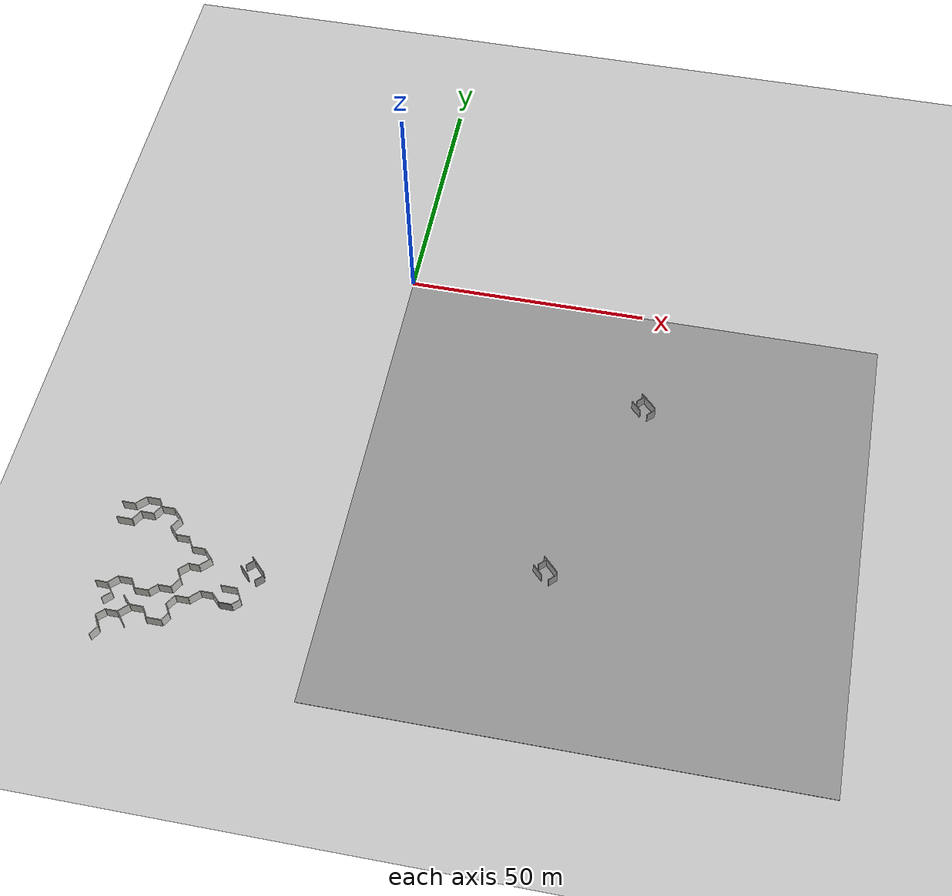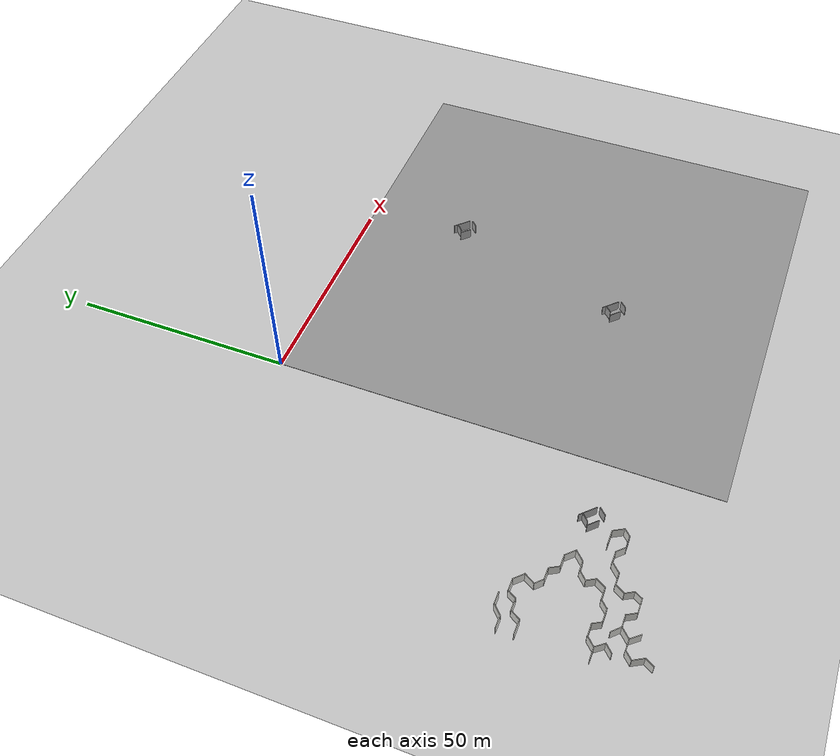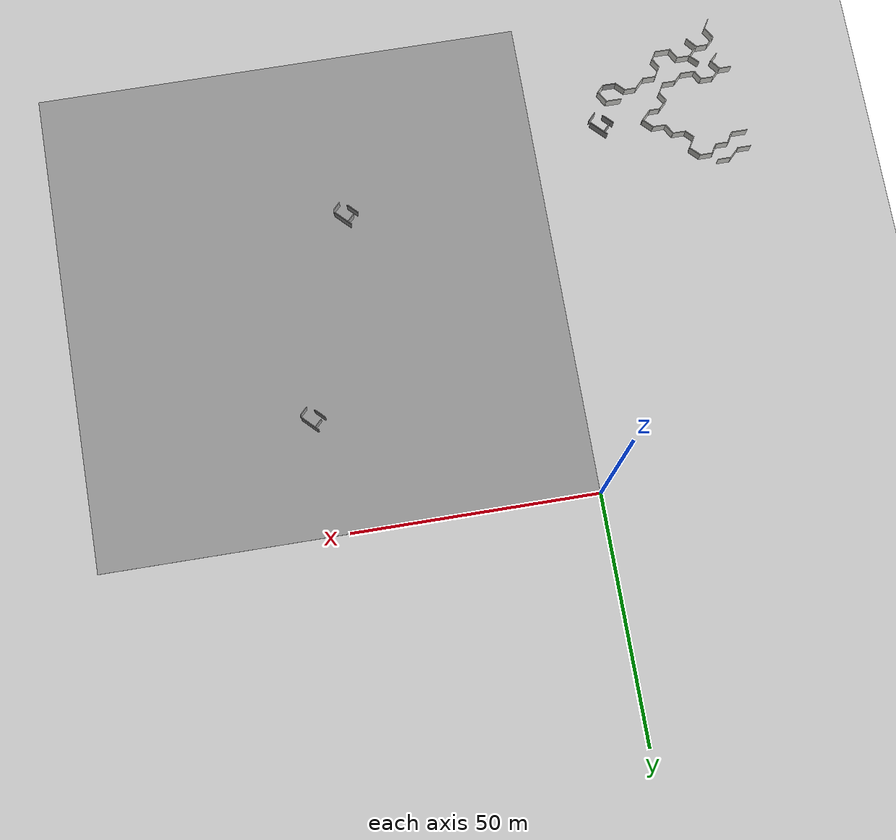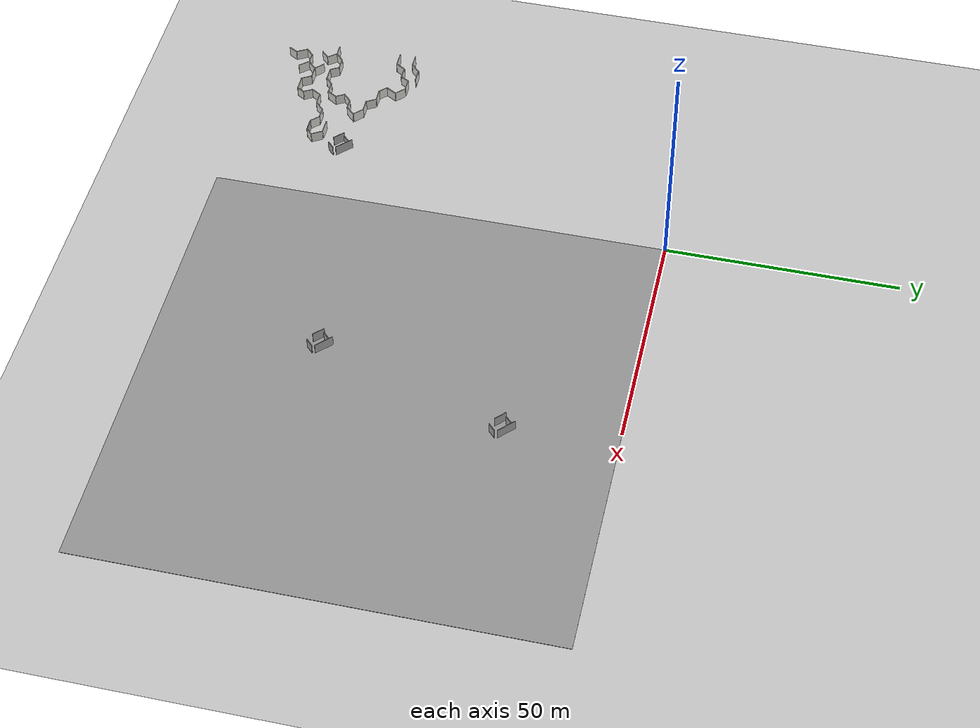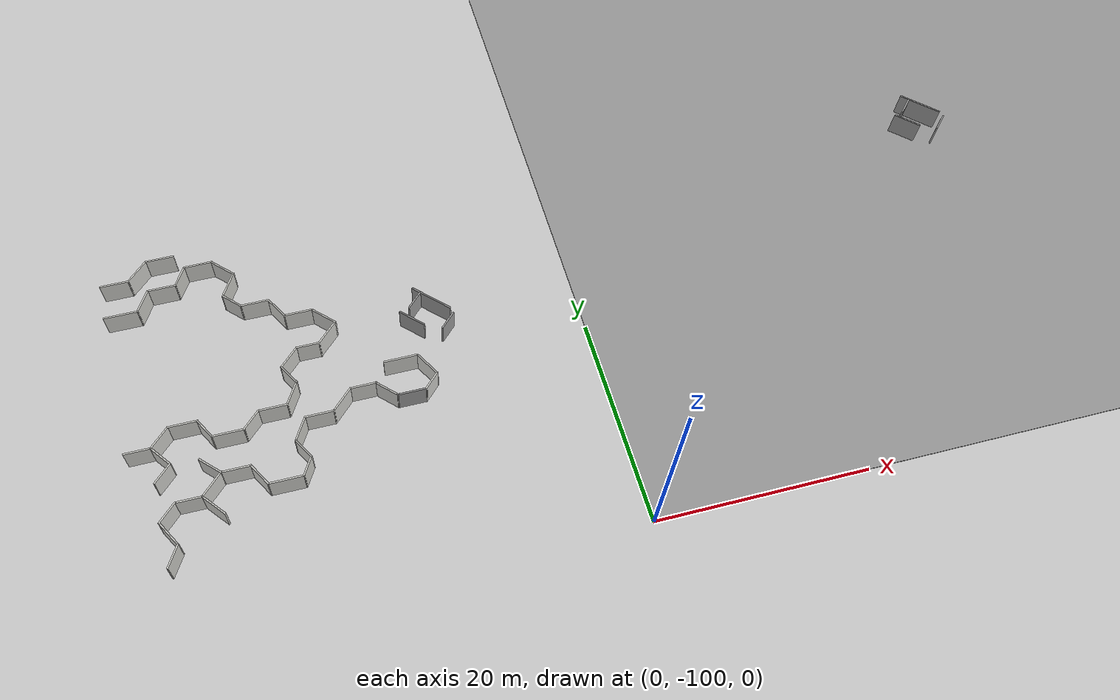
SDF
<sdf version="1.6">
 <world name="default">
  <model name="ground_plane">
   <pose>50 50 0 0 -0 0</pose>
   <static>1</static>
   <link name="link">
    <collision name="collision">
     <geometry><plane><normal>0 0 1</normal><size>100 100</size></plane></geometry>
     <surface><friction><ode><mu>100</mu><mu2>50</mu2></ode></friction></surface>
    </collision>
    <visual name="visual">
     <cast_shadows>0</cast_shadows>
     <geometry><plane><normal>0 0 1</normal><size>100 100</size></plane></geometry>
     <material>
      <script><uri>file://media/materials/scripts/gazebo.material</uri><name>Gazebo/Grey</name></script>
     </material>
    </visual>
   </link>
  </model>
  <model name="ground_plane_2">
   <static>1</static>
   <link name="link">
    <collision name="collision">
     <geometry><plane><normal>0 0 1</normal><size>100 100</size></plane></geometry>
     <surface><friction><ode><mu>100</mu><mu2>50</mu2></ode></friction></surface>
    </collision>
    <visual name="visual">
     <cast_shadows>0</cast_shadows>
     <geometry><plane><normal>0 0 1</normal><size>100 100</size></plane></geometry>
     <material>
      <script><uri>file://media/materials/scripts/gazebo.material</uri><name>Gazebo/Grey</name></script>
     </material>
    </visual>
   </link>
   <pose>50 -50 0 0 -0 0</pose>
  </model>
  <model name="maze_1">
   <pose>-54.4916 -79.5001 0 0 -0 0</pose>
   <link name="Wall_145">
    <collision name="Wall_145_Collision">
     <geometry><box><size>2.5 0.15 2.5</size></box></geometry>
     <pose>0 0 1.25 0 -0 0</pose>
    </collision>
    <visual name="Wall_145_Visual">
     <pose>0 0 1.25 0 -0 0</pose>
     <geometry><box><size>2.5 0.15 2.5</size></box></geometry>
     <material>
      <script><uri>file://media/materials/scripts/gazebo.material</uri><name>Gazebo/CeilingTiled</name></script>
      <ambient>1 1 1 1</ambient>
     </material>
     <meta><layer>0</layer></meta>
    </visual>
    <pose>12.4166 -4.28112 0 0 -0 0</pose>
   </link>
   <link name="Wall_146">
    <collision name="Wall_146_Collision">
     <geometry><box><size>2.5 0.15 2.5</size></box></geometry>
     <pose>0 0 1.25 0 -0 0</pose>
    </collision>
    <visual name="Wall_146_Visual">
     <pose>0 0 1.25 0 -0 0</pose>
     <geometry><box><size>2.5 0.15 2.5</size></box></geometry>
     <material>
      <script><uri>file://media/materials/scripts/gazebo.material</uri><name>Gazebo/CeilingTiled</name></script>
      <ambient>1 1 1 1</ambient>
     </material>
     <meta><layer>0</layer></meta>
    </visual>
    <pose>14.4225 -3.45027 0 0 -0 0.785398</pose>
   </link>
   <link name="Wall_147">
    <collision name="Wall_147_Collision">
     <geometry><box><size>2.75 0.15 2.5</size></box></geometry>
     <pose>0 0 1.25 0 -0 0</pose>
    </collision>
    <visual name="Wall_147_Visual">
     <pose>0 0 1.25 0 -0 0</pose>
     <geometry><box><size>2.75 0.15 2.5</size></box></geometry>
     <material>
      <script><uri>file://media/materials/scripts/gazebo.material</uri><name>Gazebo/CeilingTiled</name></script>
      <ambient>1 1 1 1</ambient>
     </material>
     <meta><layer>0</layer></meta>
    </visual>
    <pose>16.5533 -2.61942 0 0 -0 0</pose>
   </link>
   <link name="Wall_148">
    <collision name="Wall_148_Collision">
     <geometry><box><size>2.25 0.15 2.5</size></box></geometry>
     <pose>0 0 1.25 0 -0 0</pose>
    </collision>
    <visual name="Wall_148_Visual">
     <pose>0 0 1.25 0 -0 0</pose>
     <geometry><box><size>2.25 0.15 2.5</size></box></geometry>
     <material>
      <script><uri>file://media/materials/scripts/gazebo.material</uri><name>Gazebo/CeilingTiled</name></script>
      <ambient>1 1 1 1</ambient>
     </material>
     <meta><layer>0</layer></meta>
    </visual>
    <pose>18.3783 -3.52874 0 0 -0 -1.0472</pose>
   </link>
   <link name="Wall_149">
    <collision name="Wall_149_Collision">
     <geometry><box><size>3 0.15 2.5</size></box></geometry>
     <pose>0 0 1.25 0 -0 0</pose>
    </collision>
    <visual name="Wall_149_Visual">
     <pose>0 0 1.25 0 -0 0</pose>
     <geometry><box><size>3 0.15 2.5</size></box></geometry>
     <material>
      <script><uri>file://media/materials/scripts/gazebo.material</uri><name>Gazebo/CeilingTiled</name></script>
      <ambient>1 1 1 1</ambient>
     </material>
     <meta><layer>0</layer></meta>
    </visual>
    <pose>20.3283 -4.43807 0 0 -0 0</pose>
   </link>
   <link name="Wall_150">
    <collision name="Wall_150_Collision">
     <geometry><box><size>2.25 0.15 2.5</size></box></geometry>
     <pose>0 0 1.25 0 -0 0</pose>
    </collision>
    <visual name="Wall_150_Visual">
     <pose>0 0 1.25 0 -0 0</pose>
     <geometry><box><size>2.25 0.15 2.5</size></box></geometry>
     <material>
      <script><uri>file://media/materials/scripts/gazebo.material</uri><name>Gazebo/CeilingTiled</name></script>
      <ambient>1 1 1 1</ambient>
     </material>
     <meta><layer>0</layer></meta>
    </visual>
    <pose>22.4958 -3.69561 0 0 -0 0.785398</pose>
   </link>
   <link name="Wall_151">
    <collision name="Wall_151_Collision">
     <geometry><box><size>2.75 0.15 2.5</size></box></geometry>
     <pose>0 0 1.25 0 -0 0</pose>
    </collision>
    <visual name="Wall_151_Visual">
     <pose>0 0 1.25 0 -0 0</pose>
     <geometry><box><size>2.75 0.15 2.5</size></box></geometry>
     <material>
      <script><uri>file://media/materials/scripts/gazebo.material</uri><name>Gazebo/CeilingTiled</name></script>
      <ambient>1 1 1 1</ambient>
     </material>
     <meta><layer>0</layer></meta>
    </visual>
    <pose>24.5383 -2.95315 0 0 -0 0</pose>
   </link>
   <link name="Wall_152">
    <collision name="Wall_152_Collision">
     <geometry><box><size>2.5 0.15 2.5</size></box></geometry>
     <pose>0 0 1.25 0 -0 0</pose>
    </collision>
    <visual name="Wall_152_Visual">
     <pose>0 0 1.25 0 -0 0</pose>
     <geometry><box><size>2.5 0.15 2.5</size></box></geometry>
     <material>
      <script><uri>file://media/materials/scripts/gazebo.material</uri><name>Gazebo/CeilingTiled</name></script>
      <ambient>1 1 1 1</ambient>
     </material>
     <meta><layer>0</layer></meta>
    </visual>
    <pose>26.4258 -1.93557 0 0 -0 1.0472</pose>
   </link>
   <link name="Wall_153">
    <collision name="Wall_153_Collision">
     <geometry><box><size>2.25 0.15 2.5</size></box></geometry>
     <pose>0 0 1.25 0 -0 0</pose>
    </collision>
    <visual name="Wall_153_Visual">
     <pose>0 0 1.25 0 -0 0</pose>
     <geometry><box><size>2.25 0.15 2.5</size></box></geometry>
     <material>
      <script><uri>file://media/materials/scripts/gazebo.material</uri><name>Gazebo/CeilingTiled</name></script>
      <ambient>1 1 1 1</ambient>
     </material>
     <meta><layer>0</layer></meta>
    </visual>
    <pose>26.4883 -0.00866 0 0 -0 2.0944</pose>
   </link>
   <link name="Wall_154">
    <collision name="Wall_154_Collision">
     <geometry><box><size>2.5 0.15 2.5</size></box></geometry>
     <pose>0 0 1.25 0 -0 0</pose>
    </collision>
    <visual name="Wall_154_Visual">
     <pose>0 0 1.25 0 -0 0</pose>
     <geometry><box><size>2.5 0.15 2.5</size></box></geometry>
     <material>
      <script><uri>file://media/materials/scripts/gazebo.material</uri><name>Gazebo/CeilingTiled</name></script>
      <ambient>1 1 1 1</ambient>
     </material>
     <meta><layer>0</layer></meta>
    </visual>
    <pose>26.7941 1.73152 0 0 -0 0.785398</pose>
   </link>
   <link name="Wall_155">
    <collision name="Wall_155_Collision">
     <geometry><box><size>2.25 0.15 2.5</size></box></geometry>
     <pose>0 0 1.25 0 -0 0</pose>
    </collision>
    <visual name="Wall_155_Visual">
     <pose>0 0 1.25 0 -0 0</pose>
     <geometry><box><size>2.25 0.15 2.5</size></box></geometry>
     <material>
      <script><uri>file://media/materials/scripts/gazebo.material</uri><name>Gazebo/CeilingTiled</name></script>
      <ambient>1 1 1 1</ambient>
     </material>
     <meta><layer>0</layer></meta>
    </visual>
    <pose>28.675 2.56237 0 0 -0 0</pose>
   </link>
   <link name="Wall_156">
    <collision name="Wall_156_Collision">
     <geometry><box><size>2.75 0.15 2.5</size></box></geometry>
     <pose>0 0 1.25 0 -0 0</pose>
    </collision>
    <visual name="Wall_156_Visual">
     <pose>0 0 1.25 0 -0 0</pose>
     <geometry><box><size>2.75 0.15 2.5</size></box></geometry>
     <material>
      <script><uri>file://media/materials/scripts/gazebo.material</uri><name>Gazebo/CeilingTiled</name></script>
      <ambient>1 1 1 1</ambient>
     </material>
     <meta><layer>0</layer></meta>
    </visual>
    <pose>30.6442 3.48161 0 0 -0 0.785398</pose>
   </link>
   <link name="Wall_157">
    <collision name="Wall_157_Collision">
     <geometry><box><size>2.75 0.15 2.5</size></box></geometry>
     <pose>0 0 1.25 0 -0 0</pose>
    </collision>
    <visual name="Wall_157_Visual">
     <pose>0 0 1.25 0 -0 0</pose>
     <geometry><box><size>2.75 0.15 2.5</size></box></geometry>
     <material>
      <script><uri>file://media/materials/scripts/gazebo.material</uri><name>Gazebo/CeilingTiled</name></script>
      <ambient>1 1 1 1</ambient>
     </material>
     <meta><layer>0</layer></meta>
    </visual>
    <pose>30.6442 5.32008 0 0 -0 2.35619</pose>
   </link>
   <link name="Wall_158">
    <collision name="Wall_158_Collision">
     <geometry><box><size>2.75 0.15 2.5</size></box></geometry>
     <pose>0 0 1.25 0 -0 0</pose>
    </collision>
    <visual name="Wall_158_Visual">
     <pose>0 0 1.25 0 -0 0</pose>
     <geometry><box><size>2.75 0.15 2.5</size></box></geometry>
     <material>
      <script><uri>file://media/materials/scripts/gazebo.material</uri><name>Gazebo/CeilingTiled</name></script>
      <ambient>1 1 1 1</ambient>
     </material>
     <meta><layer>0</layer></meta>
    </visual>
    <pose>28.425 6.23932 0 0 -0 3.14159</pose>
   </link>
   <link name="Wall_159">
    <collision name="Wall_159_Collision">
     <geometry><box><size>2.5 0.15 2.5</size></box></geometry>
     <pose>0 0 1.25 0 -0 0</pose>
    </collision>
    <visual name="Wall_159_Visual">
     <pose>0 0 1.25 0 -0 0</pose>
     <geometry><box><size>2.5 0.15 2.5</size></box></geometry>
     <material>
      <script><uri>file://media/materials/scripts/gazebo.material</uri><name>Gazebo/CeilingTiled</name></script>
      <ambient>1 1 1 1</ambient>
     </material>
     <meta><layer>0</layer></meta>
    </visual>
    <pose>26.5375 7.2569 0 0 -0 2.0944</pose>
   </link>
   <link name="Wall_160">
    <collision name="Wall_160_Collision">
     <geometry><box><size>2.75 0.15 2.5</size></box></geometry>
     <pose>0 0 1.25 0 -0 0</pose>
    </collision>
    <visual name="Wall_160_Visual">
     <pose>0 0 1.25 0 -0 0</pose>
     <geometry><box><size>2.75 0.15 2.5</size></box></geometry>
     <material>
      <script><uri>file://media/materials/scripts/gazebo.material</uri><name>Gazebo/CeilingTiled</name></script>
      <ambient>1 1 1 1</ambient>
     </material>
     <meta><layer>0</layer></meta>
    </visual>
    <pose>24.65 8.27448 0 0 -0 3.14159</pose>
   </link>
   <link name="Wall_161">
    <collision name="Wall_161_Collision">
     <geometry><box><size>2.25 0.15 2.5</size></box></geometry>
     <pose>0 0 1.25 0 -0 0</pose>
    </collision>
    <visual name="Wall_161_Visual">
     <pose>0 0 1.25 0 -0 0</pose>
     <geometry><box><size>2.25 0.15 2.5</size></box></geometry>
     <material>
      <script><uri>file://media/materials/scripts/gazebo.material</uri><name>Gazebo/CeilingTiled</name></script>
      <ambient>1 1 1 1</ambient>
     </material>
     <meta><layer>0</layer></meta>
    </visual>
    <pose>22.6075 9.01694 0 0 -0 2.35619</pose>
   </link>
   <link name="Wall_162">
    <collision name="Wall_162_Collision">
     <geometry><box><size>2.75 0.15 2.5</size></box></geometry>
     <pose>0 0 1.25 0 -0 0</pose>
    </collision>
    <visual name="Wall_162_Visual">
     <pose>0 0 1.25 0 -0 0</pose>
     <geometry><box><size>2.75 0.15 2.5</size></box></geometry>
     <material>
      <script><uri>file://media/materials/scripts/gazebo.material</uri><name>Gazebo/CeilingTiled</name></script>
      <ambient>1 1 1 1</ambient>
     </material>
     <meta><layer>0</layer></meta>
    </visual>
    <pose>22.515 10.8852 0 0 -0 1.0472</pose>
   </link>
   <link name="Wall_163">
    <collision name="Wall_163_Collision">
     <geometry><box><size>2.75 0.15 2.5</size></box></geometry>
     <pose>0 0 1.25 0 -0 0</pose>
    </collision>
    <visual name="Wall_163_Visual">
     <pose>0 0 1.25 0 -0 0</pose>
     <geometry><box><size>2.75 0.15 2.5</size></box></geometry>
     <material>
      <script><uri>file://media/materials/scripts/gazebo.material</uri><name>Gazebo/CeilingTiled</name></script>
      <ambient>1 1 1 1</ambient>
     </material>
     <meta><layer>0</layer></meta>
    </visual>
    <pose>22.2458 12.9303 0 0 -0 2.35619</pose>
   </link>
   <link name="Wall_164">
    <collision name="Wall_164_Collision">
     <geometry><box><size>2.75 0.15 2.5</size></box></geometry>
     <pose>0 0 1.25 0 -0 0</pose>
    </collision>
    <visual name="Wall_164_Visual">
     <pose>0 0 1.25 0 -0 0</pose>
     <geometry><box><size>2.75 0.15 2.5</size></box></geometry>
     <material>
      <script><uri>file://media/materials/scripts/gazebo.material</uri><name>Gazebo/CeilingTiled</name></script>
      <ambient>1 1 1 1</ambient>
     </material>
     <meta><layer>0</layer></meta>
    </visual>
    <pose>20.0266 13.8496 0 0 -0 3.14159</pose>
   </link>
   <link name="Wall_165">
    <collision name="Wall_165_Collision">
     <geometry><box><size>2.25 0.15 2.5</size></box></geometry>
     <pose>0 0 1.25 0 -0 0</pose>
    </collision>
    <visual name="Wall_165_Visual">
     <pose>0 0 1.25 0 -0 0</pose>
     <geometry><box><size>2.25 0.15 2.5</size></box></geometry>
     <material>
      <script><uri>file://media/materials/scripts/gazebo.material</uri><name>Gazebo/CeilingTiled</name></script>
      <ambient>1 1 1 1</ambient>
     </material>
     <meta><layer>0</layer></meta>
    </visual>
    <pose>18.2016 12.9402 0 0 -0 -2.0944</pose>
   </link>
   <link name="Wall_166">
    <collision name="Wall_166_Collision">
     <geometry><box><size>2.75 0.15 2.5</size></box></geometry>
     <pose>0 0 1.25 0 -0 0</pose>
    </collision>
    <visual name="Wall_166_Visual">
     <pose>0 0 1.25 0 -0 0</pose>
     <geometry><box><size>2.75 0.15 2.5</size></box></geometry>
     <material>
      <script><uri>file://media/materials/scripts/gazebo.material</uri><name>Gazebo/CeilingTiled</name></script>
      <ambient>1 1 1 1</ambient>
     </material>
     <meta><layer>0</layer></meta>
    </visual>
    <pose>16.3766 12.0309 0 0 -0 3.14159</pose>
   </link>
   <link name="Wall_167">
    <collision name="Wall_167_Collision">
     <geometry><box><size>2.5 0.15 2.5</size></box></geometry>
     <pose>0 0 1.25 0 -0 0</pose>
    </collision>
    <visual name="Wall_167_Visual">
     <pose>0 0 1.25 0 -0 0</pose>
     <geometry><box><size>2.5 0.15 2.5</size></box></geometry>
     <material>
      <script><uri>file://media/materials/scripts/gazebo.material</uri><name>Gazebo/CeilingTiled</name></script>
      <ambient>1 1 1 1</ambient>
     </material>
     <meta><layer>0</layer></meta>
    </visual>
    <pose>14.4891 11.0133 0 0 -0 -2.0944</pose>
   </link>
   <link name="Wall_168">
    <collision name="Wall_168_Collision">
     <geometry><box><size>3.25 0.15 2.5</size></box></geometry>
     <pose>0 0 1.25 0 -0 0</pose>
    </collision>
    <visual name="Wall_168_Visual">
     <pose>0 0 1.25 0 -0 0</pose>
     <geometry><box><size>3.25 0.15 2.5</size></box></geometry>
     <material>
      <script><uri>file://media/materials/scripts/gazebo.material</uri><name>Gazebo/CeilingTiled</name></script>
      <ambient>1 1 1 1</ambient>
     </material>
     <meta><layer>0</layer></meta>
    </visual>
    <pose>12.3516 9.99574 0 0 -0 3.14159</pose>
   </link>
   <link name="Wall_171">
    <collision name="Wall_171_Collision">
     <geometry><box><size>2.75 0.15 2.5</size></box></geometry>
     <pose>0 0 1.25 0 -0 0</pose>
    </collision>
    <visual name="Wall_171_Visual">
     <pose>0 0 1.25 0 -0 0</pose>
     <geometry><box><size>2.75 0.15 2.5</size></box></geometry>
     <material>
      <script><uri>file://media/materials/scripts/gazebo.material</uri><name>Gazebo/CeilingTiled</name></script>
      <ambient>1 1 1 1</ambient>
     </material>
     <meta><layer>0</layer></meta>
    </visual>
    <pose>12.0934 13.5556 0 0 -0 0</pose>
   </link>
   <link name="Wall_172">
    <collision name="Wall_172_Collision">
     <geometry><box><size>2.75 0.15 2.5</size></box></geometry>
     <pose>0 0 1.25 0 -0 0</pose>
    </collision>
    <visual name="Wall_172_Visual">
     <pose>0 0 1.25 0 -0 0</pose>
     <geometry><box><size>2.75 0.15 2.5</size></box></geometry>
     <material>
      <script><uri>file://media/materials/scripts/gazebo.material</uri><name>Gazebo/CeilingTiled</name></script>
      <ambient>1 1 1 1</ambient>
     </material>
     <meta><layer>0</layer></meta>
    </visual>
    <pose>14.3126 14.4748 0 0 -0 0.785398</pose>
   </link>
   <link name="Wall_173">
    <collision name="Wall_173_Collision">
     <geometry><box><size>2.75 0.15 2.5</size></box></geometry>
     <pose>0 0 1.25 0 -0 0</pose>
    </collision>
    <visual name="Wall_173_Visual">
     <pose>0 0 1.25 0 -0 0</pose>
     <geometry><box><size>2.75 0.15 2.5</size></box></geometry>
     <material>
      <script><uri>file://media/materials/scripts/gazebo.material</uri><name>Gazebo/CeilingTiled</name></script>
      <ambient>1 1 1 1</ambient>
     </material>
     <meta><layer>0</layer></meta>
    </visual>
    <pose>16.5319 15.394 0 0 -0 0</pose>
   </link>
   <link name="Wall_175">
    <collision name="Wall_175_Collision">
     <geometry><box><size>2.25 0.15 2.5</size></box></geometry>
     <pose>0 0 1.25 0 -0 0</pose>
    </collision>
    <visual name="Wall_175_Visual">
     <pose>0 0 1.25 0 -0 0</pose>
     <geometry><box><size>2.25 0.15 2.5</size></box></geometry>
     <material>
      <script><uri>file://media/materials/scripts/gazebo.material</uri><name>Gazebo/CeilingTiled</name></script>
      <ambient>1 1 1 1</ambient>
     </material>
     <meta><layer>0</layer></meta>
    </visual>
    <pose>14.3133 -6.90169 0 0 -0 0.785398</pose>
   </link>
   <link name="Wall_176">
    <collision name="Wall_176_Collision">
     <geometry><box><size>2.53139 0.15 2.5</size></box></geometry>
     <pose>0 0 1.25 0 -0 0</pose>
    </collision>
    <visual name="Wall_176_Visual">
     <pose>0 0 1.25 0 -0 0</pose>
     <geometry><box><size>2.53139 0.15 2.5</size></box></geometry>
     <material>
      <script><uri>file://media/materials/scripts/gazebo.material</uri><name>Gazebo/CeilingTiled</name></script>
      <ambient>1 1 1 1</ambient>
     </material>
     <meta><layer>0</layer></meta>
    </visual>
    <pose>14.3237 -5.22017 0 0 -0 2.23296</pose>
   </link>
   <link name="Wall_178">
    <collision name="Wall_178_Collision">
     <geometry><box><size>2.5 0.15 2.5</size></box></geometry>
     <pose>0 0 1.25 0 -0 0</pose>
    </collision>
    <visual name="Wall_178_Visual">
     <pose>0 0 1.25 0 -0 0</pose>
     <geometry><box><size>2.5 0.15 2.5</size></box></geometry>
     <material>
      <script><uri>file://media/materials/scripts/gazebo.material</uri><name>Gazebo/CeilingTiled</name></script>
      <ambient>1 1 1 1</ambient>
     </material>
     <meta><layer>0</layer></meta>
    </visual>
    <pose>18.3889 -7.17307 0 0 -0 -0.785398</pose>
   </link>
   <link name="Wall_179">
    <collision name="Wall_179_Collision">
     <geometry><box><size>2.75 0.15 2.5</size></box></geometry>
     <pose>0 0 1.25 0 -0 0</pose>
    </collision>
    <visual name="Wall_179_Visual">
     <pose>0 0 1.25 0 -0 0</pose>
     <geometry><box><size>2.75 0.15 2.5</size></box></geometry>
     <material>
      <script><uri>file://media/materials/scripts/gazebo.material</uri><name>Gazebo/CeilingTiled</name></script>
      <ambient>1 1 1 1</ambient>
     </material>
     <meta><layer>0</layer></meta>
    </visual>
    <pose>18.3005 -8.92316 0 0 -0 -2.35619</pose>
   </link>
   <link name="Wall_180">
    <collision name="Wall_180_Collision">
     <geometry><box><size>2.5 0.15 2.5</size></box></geometry>
     <pose>0 0 1.25 0 -0 0</pose>
    </collision>
    <visual name="Wall_180_Visual">
     <pose>0 0 1.25 0 -0 0</pose>
     <geometry><box><size>2.5 0.15 2.5</size></box></geometry>
     <material>
      <script><uri>file://media/materials/scripts/gazebo.material</uri><name>Gazebo/CeilingTiled</name></script>
      <ambient>1 1 1 1</ambient>
     </material>
     <meta><layer>0</layer></meta>
    </visual>
    <pose>16.2062 -9.8424 0 0 -0 3.14159</pose>
   </link>
   <link name="Wall_181">
    <collision name="Wall_181_Collision">
     <geometry><box><size>2.25 0.15 2.5</size></box></geometry>
     <pose>0 0 1.25 0 -0 0</pose>
    </collision>
    <visual name="Wall_181_Visual">
     <pose>0 0 1.25 0 -0 0</pose>
     <geometry><box><size>2.25 0.15 2.5</size></box></geometry>
     <material>
      <script><uri>file://media/materials/scripts/gazebo.material</uri><name>Gazebo/CeilingTiled</name></script>
      <ambient>1 1 1 1</ambient>
     </material>
     <meta><layer>0</layer></meta>
    </visual>
    <pose>14.2888 -10.5849 0 0 -0 -2.35619</pose>
   </link>
   <link name="Wall_182">
    <collision name="Wall_182_Collision">
     <geometry><box><size>2.75 0.15 2.5</size></box></geometry>
     <pose>0 0 1.25 0 -0 0</pose>
    </collision>
    <visual name="Wall_182_Visual">
     <pose>0 0 1.25 0 -0 0</pose>
     <geometry><box><size>2.75 0.15 2.5</size></box></geometry>
     <material>
      <script><uri>file://media/materials/scripts/gazebo.material</uri><name>Gazebo/CeilingTiled</name></script>
      <ambient>1 1 1 1</ambient>
     </material>
     <meta><layer>0</layer></meta>
    </visual>
    <pose>14.1963 -12.4532 0 0 -0 -1.0472</pose>
   </link>
   <link name="Wall_183">
    <collision name="Wall_183_Collision">
     <geometry><box><size>2.25 0.15 2.5</size></box></geometry>
     <pose>0 0 1.25 0 -0 0</pose>
    </collision>
    <visual name="Wall_183_Visual">
     <pose>0 0 1.25 0 -0 0</pose>
     <geometry><box><size>2.25 0.15 2.5</size></box></geometry>
     <material>
      <script><uri>file://media/materials/scripts/gazebo.material</uri><name>Gazebo/CeilingTiled</name></script>
      <ambient>1 1 1 1</ambient>
     </material>
     <meta><layer>0</layer></meta>
    </visual>
    <pose>14.3213 -14.4883 0 0 -0 -2.0944</pose>
   </link>
   <link name="Wall_185">
    <collision name="Wall_185_Collision">
     <geometry><box><size>2.70016 0.15 2.5</size></box></geometry>
     <pose>0 0 1.25 0 -0 0</pose>
    </collision>
    <visual name="Wall_185_Visual">
     <pose>0 0 1.25 0 -0 0</pose>
     <geometry><box><size>2.70016 0.15 2.5</size></box></geometry>
     <material>
      <script><uri>file://media/materials/scripts/gazebo.material</uri><name>Gazebo/CeilingTiled</name></script>
      <ambient>1 1 1 1</ambient>
     </material>
     <meta><layer>0</layer></meta>
    </visual>
    <pose>18.202 -10.8182 0 0 -0 2.27007</pose>
   </link>
   <link name="Wall_187">
    <collision name="Wall_187_Collision">
     <geometry><box><size>2.75 0.15 2.5</size></box></geometry>
     <pose>0 0 1.25 0 -0 0</pose>
    </collision>
    <visual name="Wall_187_Visual">
     <pose>0 0 1.25 0 -0 0</pose>
     <geometry><box><size>2.75 0.15 2.5</size></box></geometry>
     <material>
      <script><uri>file://media/materials/scripts/gazebo.material</uri><name>Gazebo/CeilingTiled</name></script>
      <ambient>1 1 1 1</ambient>
     </material>
     <meta><layer>0</layer></meta>
    </visual>
    <pose>20.5197 -8.00392 0 0 -0 0</pose>
   </link>
   <link name="Wall_188">
    <collision name="Wall_188_Collision">
     <geometry><box><size>2.5 0.15 2.5</size></box></geometry>
     <pose>0 0 1.25 0 -0 0</pose>
    </collision>
    <visual name="Wall_188_Visual">
     <pose>0 0 1.25 0 -0 0</pose>
     <geometry><box><size>2.5 0.15 2.5</size></box></geometry>
     <material>
      <script><uri>file://media/materials/scripts/gazebo.material</uri><name>Gazebo/CeilingTiled</name></script>
      <ambient>1 1 1 1</ambient>
     </material>
     <meta><layer>0</layer></meta>
    </visual>
    <pose>22.4072 -9.0215 0 0 -0 -1.0472</pose>
   </link>
   <link name="Wall_189">
    <collision name="Wall_189_Collision">
     <geometry><box><size>3.25 0.15 2.5</size></box></geometry>
     <pose>0 0 1.25 0 -0 0</pose>
    </collision>
    <visual name="Wall_189_Visual">
     <pose>0 0 1.25 0 -0 0</pose>
     <geometry><box><size>3.25 0.15 2.5</size></box></geometry>
     <material>
      <script><uri>file://media/materials/scripts/gazebo.material</uri><name>Gazebo/CeilingTiled</name></script>
      <ambient>1 1 1 1</ambient>
     </material>
     <meta><layer>0</layer></meta>
    </visual>
    <pose>24.5447 -10.0391 0 0 -0 0</pose>
   </link>
   <link name="Wall_190">
    <collision name="Wall_190_Collision">
     <geometry><box><size>2 0.15 2.5</size></box></geometry>
     <pose>0 0 1.25 0 -0 0</pose>
    </collision>
    <visual name="Wall_190_Visual">
     <pose>0 0 1.25 0 -0 0</pose>
     <geometry><box><size>2 0.15 2.5</size></box></geometry>
     <material>
      <script><uri>file://media/materials/scripts/gazebo.material</uri><name>Gazebo/CeilingTiled</name></script>
      <ambient>1 1 1 1</ambient>
     </material>
     <meta><layer>0</layer></meta>
    </visual>
    <pose>26.5572 -9.23801 0 0 -0 1.0472</pose>
   </link>
   <link name="Wall_191">
    <collision name="Wall_191_Collision">
     <geometry><box><size>2.25 0.15 2.5</size></box></geometry>
     <pose>0 0 1.25 0 -0 0</pose>
    </collision>
    <visual name="Wall_191_Visual">
     <pose>0 0 1.25 0 -0 0</pose>
     <geometry><box><size>2.25 0.15 2.5</size></box></geometry>
     <material>
      <script><uri>file://media/materials/scripts/gazebo.material</uri><name>Gazebo/CeilingTiled</name></script>
      <ambient>1 1 1 1</ambient>
     </material>
     <meta><layer>0</layer></meta>
    </visual>
    <pose>26.4947 -7.52761 0 0 -0 2.0944</pose>
   </link>
   <link name="Wall_192">
    <collision name="Wall_192_Collision">
     <geometry><box><size>2.5 0.15 2.5</size></box></geometry>
     <pose>0 0 1.25 0 -0 0</pose>
    </collision>
    <visual name="Wall_192_Visual">
     <pose>0 0 1.25 0 -0 0</pose>
     <geometry><box><size>2.5 0.15 2.5</size></box></geometry>
     <material>
      <script><uri>file://media/materials/scripts/gazebo.material</uri><name>Gazebo/CeilingTiled</name></script>
      <ambient>1 1 1 1</ambient>
     </material>
     <meta><layer>0</layer></meta>
    </visual>
    <pose>26.5572 -5.6007 0 0 -0 1.0472</pose>
   </link>
   <link name="Wall_193">
    <collision name="Wall_193_Collision">
     <geometry><box><size>2.75 0.15 2.5</size></box></geometry>
     <pose>0 0 1.25 0 -0 0</pose>
    </collision>
    <visual name="Wall_193_Visual">
     <pose>0 0 1.25 0 -0 0</pose>
     <geometry><box><size>2.75 0.15 2.5</size></box></geometry>
     <material>
      <script><uri>file://media/materials/scripts/gazebo.material</uri><name>Gazebo/CeilingTiled</name></script>
      <ambient>1 1 1 1</ambient>
     </material>
     <meta><layer>0</layer></meta>
    </visual>
    <pose>28.4447 -4.58312 0 0 -0 0</pose>
   </link>
   <link name="Wall_194">
    <collision name="Wall_194_Collision">
     <geometry><box><size>2.75 0.15 2.5</size></box></geometry>
     <pose>0 0 1.25 0 -0 0</pose>
    </collision>
    <visual name="Wall_194_Visual">
     <pose>0 0 1.25 0 -0 0</pose>
     <geometry><box><size>2.75 0.15 2.5</size></box></geometry>
     <material>
      <script><uri>file://media/materials/scripts/gazebo.material</uri><name>Gazebo/CeilingTiled</name></script>
      <ambient>1 1 1 1</ambient>
     </material>
     <meta><layer>0</layer></meta>
    </visual>
    <pose>30.664 -3.66389 0 0 -0 0.785398</pose>
   </link>
   <link name="Wall_195">
    <collision name="Wall_195_Collision">
     <geometry><box><size>2.5 0.15 2.5</size></box></geometry>
     <pose>0 0 1.25 0 -0 0</pose>
    </collision>
    <visual name="Wall_195_Visual">
     <pose>0 0 1.25 0 -0 0</pose>
     <geometry><box><size>2.5 0.15 2.5</size></box></geometry>
     <material>
      <script><uri>file://media/materials/scripts/gazebo.material</uri><name>Gazebo/CeilingTiled</name></script>
      <ambient>1 1 1 1</ambient>
     </material>
     <meta><layer>0</layer></meta>
    </visual>
    <pose>32.7582 -2.74465 0 0 -0 0</pose>
   </link>
   <link name="Wall_196">
    <collision name="Wall_196_Collision">
     <geometry><box><size>2.5 0.15 2.5</size></box></geometry>
     <pose>0 0 1.25 0 -0 0</pose>
    </collision>
    <visual name="Wall_196_Visual">
     <pose>0 0 1.25 0 -0 0</pose>
     <geometry><box><size>2.5 0.15 2.5</size></box></geometry>
     <material>
      <script><uri>file://media/materials/scripts/gazebo.material</uri><name>Gazebo/CeilingTiled</name></script>
      <ambient>1 1 1 1</ambient>
     </material>
     <meta><layer>0</layer></meta>
    </visual>
    <pose>34.764 -3.5755 0 0 -0 -0.785398</pose>
   </link>
   <link name="Wall_197">
    <collision name="Wall_197_Collision">
     <geometry><box><size>2.75 0.15 2.5</size></box></geometry>
     <pose>0 0 1.25 0 -0 0</pose>
    </collision>
    <visual name="Wall_197_Visual">
     <pose>0 0 1.25 0 -0 0</pose>
     <geometry><box><size>2.75 0.15 2.5</size></box></geometry>
     <material>
      <script><uri>file://media/materials/scripts/gazebo.material</uri><name>Gazebo/Grey</name></script>
      <ambient>1 1 1 1</ambient>
     </material>
     <meta><layer>0</layer></meta>
    </visual>
    <pose>36.8949 -4.40635 0 0 -0 0</pose>
   </link>
   <link name="Wall_198">
    <collision name="Wall_198_Collision">
     <geometry><box><size>2 0.15 2.5</size></box></geometry>
     <pose>0 0 1.25 0 -0 0</pose>
    </collision>
    <visual name="Wall_198_Visual">
     <pose>0 0 1.25 0 -0 0</pose>
     <geometry><box><size>2 0.15 2.5</size></box></geometry>
     <material>
      <script><uri>file://media/materials/scripts/gazebo.material</uri><name>Gazebo/CeilingTiled</name></script>
      <ambient>1 1 1 1</ambient>
     </material>
     <meta><layer>0</layer></meta>
    </visual>
    <pose>38.849 -3.75227 0 0 -0 0.785398</pose>
   </link>
   <link name="Wall_199">
    <collision name="Wall_199_Collision">
     <geometry><box><size>2.75 0.15 2.5</size></box></geometry>
     <pose>0 0 1.25 0 -0 0</pose>
    </collision>
    <visual name="Wall_199_Visual">
     <pose>0 0 1.25 0 -0 0</pose>
     <geometry><box><size>2.75 0.15 2.5</size></box></geometry>
     <material>
      <script><uri>file://media/materials/scripts/gazebo.material</uri><name>Gazebo/CeilingTiled</name></script>
      <ambient>1 1 1 1</ambient>
     </material>
     <meta><layer>0</layer></meta>
    </visual>
    <pose>38.853 -1.97237 0 0 -0 2.0944</pose>
   </link>
   <link name="Wall_200">
    <collision name="Wall_200_Collision">
     <geometry><box><size>3.25 0.15 2.5</size></box></geometry>
     <pose>0 0 1.25 0 -0 0</pose>
    </collision>
    <visual name="Wall_200_Visual">
     <pose>0 0 1.25 0 -0 0</pose>
     <geometry><box><size>3.25 0.15 2.5</size></box></geometry>
     <material>
      <script><uri>file://media/materials/scripts/gazebo.material</uri><name>Gazebo/CeilingTiled</name></script>
      <ambient>1 1 1 1</ambient>
     </material>
     <meta><layer>0</layer></meta>
    </visual>
    <pose>36.653 -0.846533 0 0 -0 3.14159</pose>
   </link>
   <static>1</static>
  </model>
  <model name="obs2_0">
   <pose>40.6117 -64.8947 0 0 -0 0</pose>
   <link name="Wall_0">
    <collision name="Wall_0_Collision">
     <geometry><box><size>2 0.15 2.5</size></box></geometry>
     <pose>0 0 1.25 0 -0 0</pose>
    </collision>
    <visual name="Wall_0_Visual">
     <pose>0 0 1.25 0 -0 0</pose>
     <geometry><box><size>2 0.15 2.5</size></box></geometry>
     <material>
      <script><uri>file://media/materials/scripts/gazebo.material</uri><name>Gazebo/Grey</name></script>
      <ambient>1 1 1 1</ambient>
     </material>
    </visual>
    <pose>-0.796332 1.10862 0 0 -0 0.785398</pose>
   </link>
   <link name="Wall_2">
    <collision name="Wall_2_Collision">
     <geometry><box><size>4.25 0.15 2.5</size></box></geometry>
     <pose>0 0 1.25 0 -0 0</pose>
    </collision>
    <visual name="Wall_2_Visual">
     <pose>0 0 1.25 0 -0 0</pose>
     <geometry><box><size>4.25 0.15 2.5</size></box></geometry>
     <material>
      <script><uri>file://media/materials/scripts/gazebo.material</uri><name>Gazebo/Grey</name></script>
      <ambient>1 1 1 1</ambient>
     </material>
    </visual>
    <pose>0.773928 0.982661 0 0 0 -0.785398</pose>
   </link>
   <link name="Wall_4">
    <collision name="Wall_4_Collision">
     <geometry><box><size>2.75 0.15 2.5</size></box></geometry>
     <pose>0 0 1.25 0 -0 0</pose>
    </collision>
    <visual name="Wall_4_Visual">
     <pose>0 0 1.25 0 -0 0</pose>
     <geometry><box><size>2.75 0.15 2.5</size></box></geometry>
     <material>
      <script><uri>file://media/materials/scripts/gazebo.material</uri><name>Gazebo/Grey</name></script>
      <ambient>1 1 1 1</ambient>
     </material>
    </visual>
    <pose>-1.45556 -0.740711 0 0 0 -0.785398</pose>
   </link>
   <link name="Wall_6">
    <collision name="Wall_6_Collision">
     <geometry><box><size>2 0.15 2.5</size></box></geometry>
     <pose>0 0 1.25 0 -0 0</pose>
    </collision>
    <visual name="Wall_6_Visual">
     <pose>0 0 1.25 0 -0 0</pose>
     <geometry><box><size>2 0.15 2.5</size></box></geometry>
     <material>
      <script><uri>file://media/materials/scripts/gazebo.material</uri><name>Gazebo/Grey</name></script>
      <ambient>1 1 1 1</ambient>
     </material>
    </visual>
    <pose>1.72073 -1.77816 0 0 -0 0.785398</pose>
   </link>
   <static>1</static>
  </model>
  <model name="obs2_1">
   <pose>-14.4533 -75.6924 0 0 -0 0</pose>
   <link name="Wall_0">
    <collision name="Wall_0_Collision">
     <geometry><box><size>2 0.15 2.5</size></box></geometry>
     <pose>0 0 1.25 0 -0 0</pose>
    </collision>
    <visual name="Wall_0_Visual">
     <pose>0 0 1.25 0 -0 0</pose>
     <geometry><box><size>2 0.15 2.5</size></box></geometry>
     <material>
      <script><uri>file://media/materials/scripts/gazebo.material</uri><name>Gazebo/Grey</name></script>
      <ambient>1 1 1 1</ambient>
     </material>
    </visual>
    <pose>-0.796332 1.10862 0 0 -0 0.785398</pose>
   </link>
   <link name="Wall_2">
    <collision name="Wall_2_Collision">
     <geometry><box><size>4.25 0.15 2.5</size></box></geometry>
     <pose>0 0 1.25 0 -0 0</pose>
    </collision>
    <visual name="Wall_2_Visual">
     <pose>0 0 1.25 0 -0 0</pose>
     <geometry><box><size>4.25 0.15 2.5</size></box></geometry>
     <material>
      <script><uri>file://media/materials/scripts/gazebo.material</uri><name>Gazebo/Grey</name></script>
      <ambient>1 1 1 1</ambient>
     </material>
    </visual>
    <pose>0.773928 0.982661 0 0 0 -0.785398</pose>
   </link>
   <link name="Wall_4">
    <collision name="Wall_4_Collision">
     <geometry><box><size>2.75 0.15 2.5</size></box></geometry>
     <pose>0 0 1.25 0 -0 0</pose>
    </collision>
    <visual name="Wall_4_Visual">
     <pose>0 0 1.25 0 -0 0</pose>
     <geometry><box><size>2.75 0.15 2.5</size></box></geometry>
     <material>
      <script><uri>file://media/materials/scripts/gazebo.material</uri><name>Gazebo/Grey</name></script>
      <ambient>1 1 1 1</ambient>
     </material>
    </visual>
    <pose>-1.45556 -0.740711 0 0 0 -0.785398</pose>
   </link>
   <link name="Wall_6">
    <collision name="Wall_6_Collision">
     <geometry><box><size>2 0.15 2.5</size></box></geometry>
     <pose>0 0 1.25 0 -0 0</pose>
    </collision>
    <visual name="Wall_6_Visual">
     <pose>0 0 1.25 0 -0 0</pose>
     <geometry><box><size>2 0.15 2.5</size></box></geometry>
     <material>
      <script><uri>file://media/materials/scripts/gazebo.material</uri><name>Gazebo/Grey</name></script>
      <ambient>1 1 1 1</ambient>
     </material>
    </visual>
    <pose>1.72073 -1.77816 0 0 -0 0.785398</pose>
   </link>
   <static>1</static>
  </model>
  <model name="obs2_4">
   <pose>53.6513 -23.6227 0 0 -0 0</pose>
   <link name="Wall_0">
    <collision name="Wall_0_Collision">
     <geometry><box><size>2 0.15 2.5</size></box></geometry>
     <pose>0 0 1.25 0 -0 0</pose>
    </collision>
    <visual name="Wall_0_Visual">
     <pose>0 0 1.25 0 -0 0</pose>
     <geometry><box><size>2 0.15 2.5</size></box></geometry>
     <material>
      <script><uri>file://media/materials/scripts/gazebo.material</uri><name>Gazebo/Grey</name></script>
      <ambient>1 1 1 1</ambient>
     </material>
    </visual>
    <pose>-0.796332 1.10862 0 0 -0 0.785398</pose>
   </link>
   <link name="Wall_2">
    <collision name="Wall_2_Collision">
     <geometry><box><size>4.25 0.15 2.5</size></box></geometry>
     <pose>0 0 1.25 0 -0 0</pose>
    </collision>
    <visual name="Wall_2_Visual">
     <pose>0 0 1.25 0 -0 0</pose>
     <geometry><box><size>4.25 0.15 2.5</size></box></geometry>
     <material>
      <script><uri>file://media/materials/scripts/gazebo.material</uri><name>Gazebo/Grey</name></script>
      <ambient>1 1 1 1</ambient>
     </material>
    </visual>
    <pose>0.773928 0.982661 0 0 0 -0.785398</pose>
   </link>
   <link name="Wall_4">
    <collision name="Wall_4_Collision">
     <geometry><box><size>2.75 0.15 2.5</size></box></geometry>
     <pose>0 0 1.25 0 -0 0</pose>
    </collision>
    <visual name="Wall_4_Visual">
     <pose>0 0 1.25 0 -0 0</pose>
     <geometry><box><size>2.75 0.15 2.5</size></box></geometry>
     <material>
      <script><uri>file://media/materials/scripts/gazebo.material</uri><name>Gazebo/Grey</name></script>
      <ambient>1 1 1 1</ambient>
     </material>
    </visual>
    <pose>-1.45556 -0.740711 0 0 0 -0.785398</pose>
   </link>
   <link name="Wall_6">
    <collision name="Wall_6_Collision">
     <geometry><box><size>2 0.15 2.5</size></box></geometry>
     <pose>0 0 1.25 0 -0 0</pose>
    </collision>
    <visual name="Wall_6_Visual">
     <pose>0 0 1.25 0 -0 0</pose>
     <geometry><box><size>2 0.15 2.5</size></box></geometry>
     <material>
      <script><uri>file://media/materials/scripts/gazebo.material</uri><name>Gazebo/Grey</name></script>
      <ambient>1 1 1 1</ambient>
     </material>
    </visual>
    <pose>1.72073 -1.77816 0 0 -0 0.785398</pose>
   </link>
   <static>1</static>
  </model>
 </world>
</sdf>
